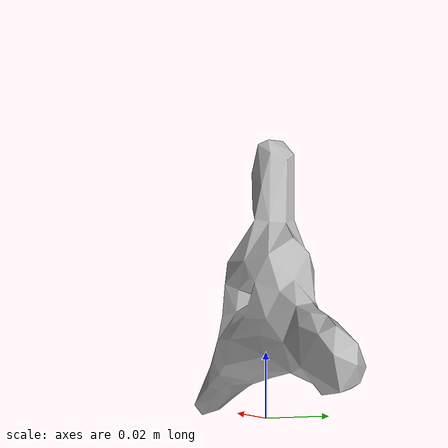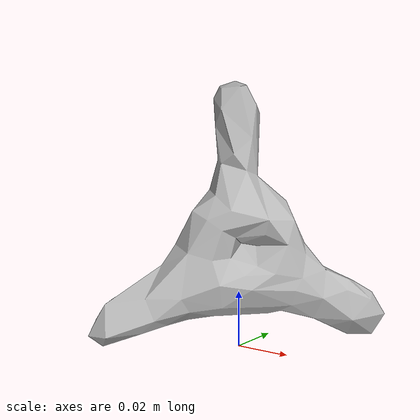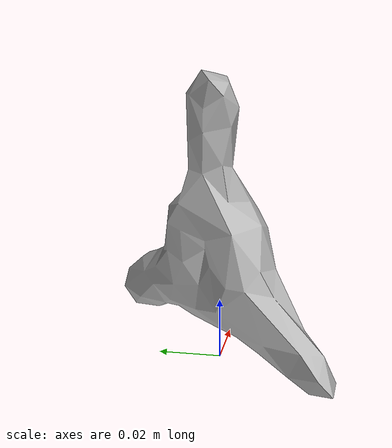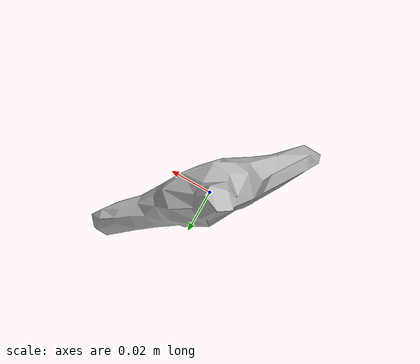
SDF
<?xml version='1.0'?>
<sdf version="1.4">
  <model name="072-h_toy_airplane">
    <static>false</static>
    <link name="link">
      <inertial>
        <pose>0.0009952677079333077 0.0007427635279685071 0.03595681270781376 -0.8710457931916915 0.06181024917061812 2.398722172439179</pose>
        <mass>0.008601560235022728</mass>
        <inertia>
          <ixx>7.372701749130735e-06</ixx>
          <ixy>-2.416043850081931e-22</ixy>
          <ixz>-1.7547605562998544e-21</ixz>
          <iyy>4.1217406599445045e-06</iyy>
          <iyz>-2.3519766052154553e-22</iyz>
          <izz>3.6974911381999608e-06</izz>
        </inertia>
      </inertial>
      <collision name="collision">
        <geometry>
          <mesh>
            <!-- Use a downsampled mesh for collisions -->
            <uri>model:///072-h_toy_airplane/072-h_toy_airplane_250_collision.stl</uri>
	        </mesh>
        </geometry>
        <surface>
      </surface>
      </collision>
      <visual name="visual">
        <geometry>
          <mesh>
            <uri>model:///072-h_toy_airplane/textured.obj</uri>
	        </mesh>
        </geometry>
        <material>
          <script>
            <uri>model:///072-h_toy_airplane/072-h_toy_airplane.material</uri>
            <name>072-h_toy_airplane</name>
          </script>
        </material>
      </visual>
    </link>
  </model>
</sdf>
